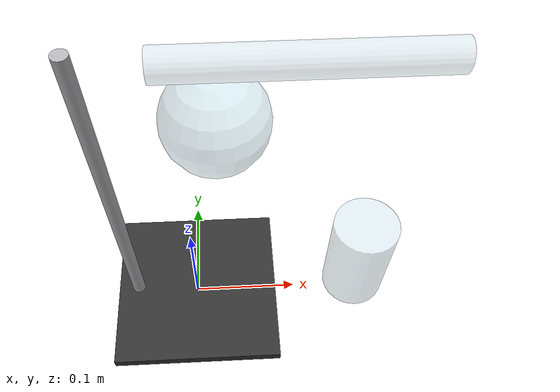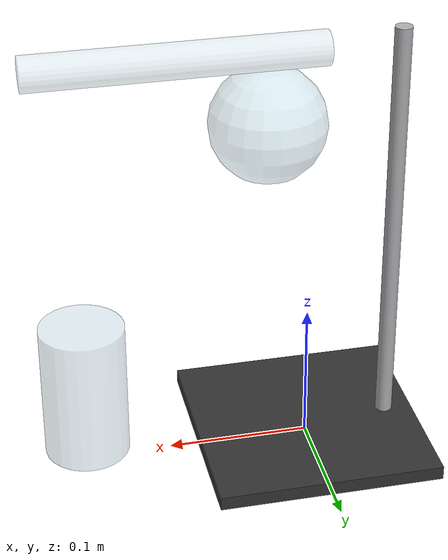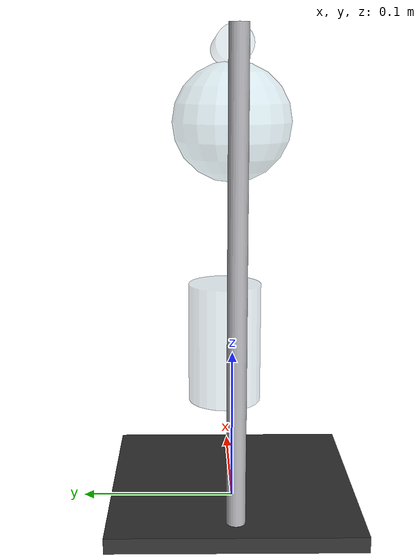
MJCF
<?xml version="1.0" encoding="utf-8"?>
<mujoco model="distillation_apparatus">
  <compiler angle="radian" autolimits="true"/>
  <default>
    <default class="body"><geom contype="1" conaffinity="1"/></default>
  </default>
  <worldbody>
    <body name="base">
      <geom type="box" size="0.08 0.08 0.005" pos="0 0 0.005" rgba="0.2 0.2 0.2 1" class="body"/>
      <geom type="cylinder" size="0.006 0.15" pos="-0.06 0 0.16" rgba="0.7 0.7 0.72 1" class="body"/>
      <geom type="sphere" size="0.04" pos="0.03 0 0.25" rgba="0.7 0.85 0.9 0.4" class="body"/>
      <geom type="cylinder" size="0.012 0.10" pos="0.09 0 0.30" rgba="0.75 0.85 0.9 0.35" class="body" quat="0.7071068 0 0.7071068 0"/>
      <body name="receiver_flask" pos="0.16 0 0.06">
        <joint name="receiver_flask_joint" type="slide" axis="0 0 1" range="0 0.05" damping="1.0" frictionloss="0.5"/>
  <geom type="cylinder" size="0.03 0.05" pos="0 0 0" rgba="0.75 0.85 0.9 0.4" class="body"/>
      </body>
    </body>
  </worldbody>
</mujoco>
